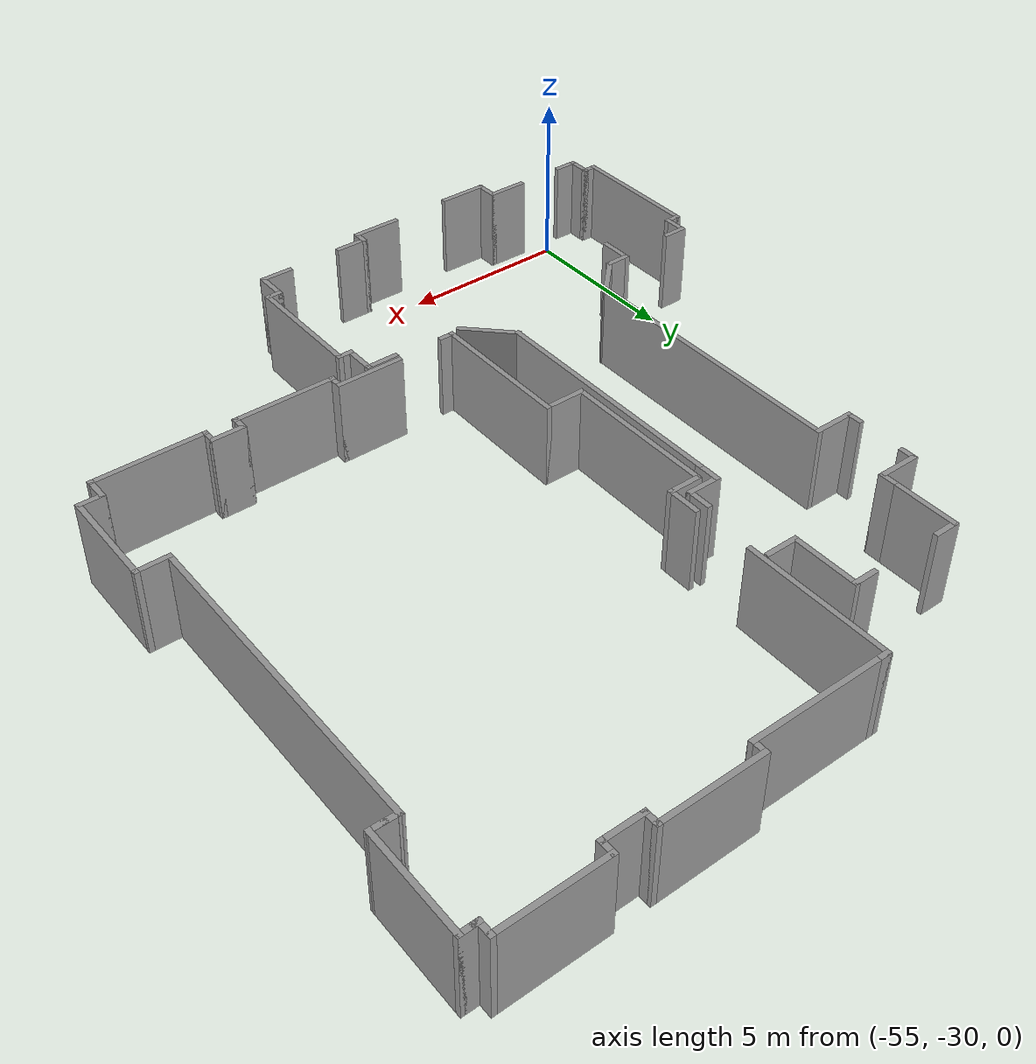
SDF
<?xml version='1.0'?>
<sdf version='1.7'>
  <model name='labypasillo'>
    <pose>-28.3961 -15.5624 0 0 -0 0</pose>
    <link name='Wall_10'>
      <collision name='Wall_10_Collision'>
        <geometry>
          <box>
            <size>0.5 0.15 2.5</size>
          </box>
        </geometry>
        <pose>0 0 1.25 0 -0 0</pose>
      </collision>
      <visual name='Wall_10_Visual'>
        <pose>0 0 1.25 0 -0 0</pose>
        <geometry>
          <box>
            <size>0.5 0.15 2.5</size>
          </box>
        </geometry>
        <material>
          <script>
            <uri>file://media/materials/scripts/gazebo.material</uri>
            <name>Gazebo/Grey</name>
          </script>
          <ambient>1 1 1 1</ambient>
        </material>
        <meta>
          <layer>0</layer>
        </meta>
      </visual>
      <pose>-11.8394 5.68996 0 0 -0 -1.5708</pose>
    </link>
    <link name='Wall_11'>
      <collision name='Wall_11_Collision'>
        <geometry>
          <box>
            <size>1.25 0.15 2.5</size>
          </box>
        </geometry>
        <pose>0 0 1.25 0 -0 0</pose>
      </collision>
      <visual name='Wall_11_Visual'>
        <pose>0 0 1.25 0 -0 0</pose>
        <geometry>
          <box>
            <size>1.25 0.15 2.5</size>
          </box>
        </geometry>
        <material>
          <script>
            <uri>file://media/materials/scripts/gazebo.material</uri>
            <name>Gazebo/Grey</name>
          </script>
          <ambient>1 1 1 1</ambient>
        </material>
        <meta>
          <layer>0</layer>
        </meta>
      </visual>
      <pose>-12.3894 5.51496 0 0 -0 3.14159</pose>
    </link>
    <link name='Wall_12'>
      <collision name='Wall_12_Collision'>
        <geometry>
          <box>
            <size>0.5 0.15 2.5</size>
          </box>
        </geometry>
        <pose>0 0 1.25 0 -0 0</pose>
      </collision>
      <visual name='Wall_12_Visual'>
        <pose>0 0 1.25 0 -0 0</pose>
        <geometry>
          <box>
            <size>0.5 0.15 2.5</size>
          </box>
        </geometry>
        <material>
          <script>
            <uri>file://media/materials/scripts/gazebo.material</uri>
            <name>Gazebo/Grey</name>
          </script>
          <ambient>1 1 1 1</ambient>
        </material>
        <meta>
          <layer>0</layer>
        </meta>
      </visual>
      <pose>-12.9394 5.68996 0 0 -0 1.5708</pose>
    </link>
    <link name='Wall_13'>
      <collision name='Wall_13_Collision'>
        <geometry>
          <box>
            <size>3 0.15 2.5</size>
          </box>
        </geometry>
        <pose>0 0 1.25 0 -0 0</pose>
      </collision>
      <visual name='Wall_13_Visual'>
        <pose>0 0 1.25 0 -0 0</pose>
        <geometry>
          <box>
            <size>3 0.15 2.5</size>
          </box>
        </geometry>
        <material>
          <script>
            <uri>file://media/materials/scripts/gazebo.material</uri>
            <name>Gazebo/Grey</name>
          </script>
          <ambient>1 1 1 1</ambient>
        </material>
        <meta>
          <layer>0</layer>
        </meta>
      </visual>
      <pose>-14.3644 5.86496 0 0 -0 3.14159</pose>
    </link>
    <link name='Wall_14'>
      <collision name='Wall_14_Collision'>
        <geometry>
          <box>
            <size>0.5 0.15 2.5</size>
          </box>
        </geometry>
        <pose>0 0 1.25 0 -0 0</pose>
      </collision>
      <visual name='Wall_14_Visual'>
        <pose>0 0 1.25 0 -0 0</pose>
        <geometry>
          <box>
            <size>0.5 0.15 2.5</size>
          </box>
        </geometry>
        <material>
          <script>
            <uri>file://media/materials/scripts/gazebo.material</uri>
            <name>Gazebo/Grey</name>
          </script>
          <ambient>1 1 1 1</ambient>
        </material>
        <meta>
          <layer>0</layer>
        </meta>
      </visual>
      <pose>-15.7894 5.68996 0 0 -0 -1.5708</pose>
    </link>
    <link name='Wall_15'>
      <collision name='Wall_15_Collision'>
        <geometry>
          <box>
            <size>3.75 0.15 2.5</size>
          </box>
        </geometry>
        <pose>0 0 1.25 0 -0 0</pose>
      </collision>
      <visual name='Wall_15_Visual'>
        <pose>0 0 1.25 0 -0 0</pose>
        <geometry>
          <box>
            <size>3.75 0.15 2.5</size>
          </box>
        </geometry>
        <material>
          <script>
            <uri>file://media/materials/scripts/gazebo.material</uri>
            <name>Gazebo/Grey</name>
          </script>
          <ambient>1 1 1 1</ambient>
        </material>
        <meta>
          <layer>0</layer>
        </meta>
      </visual>
      <pose>-17.5894 5.51496 0 0 -0 3.14159</pose>
    </link>
    <link name='Wall_16'>
      <collision name='Wall_16_Collision'>
        <geometry>
          <box>
            <size>0.5 0.15 2.5</size>
          </box>
        </geometry>
        <pose>0 0 1.25 0 -0 0</pose>
      </collision>
      <visual name='Wall_16_Visual'>
        <pose>0 0 1.25 0 -0 0</pose>
        <geometry>
          <box>
            <size>0.5 0.15 2.5</size>
          </box>
        </geometry>
        <material>
          <script>
            <uri>file://media/materials/scripts/gazebo.material</uri>
            <name>Gazebo/Grey</name>
          </script>
          <ambient>1 1 1 1</ambient>
        </material>
        <meta>
          <layer>0</layer>
        </meta>
      </visual>
      <pose>-19.5644 5.51496 0 0 -0 3.14159</pose>
    </link>
    <link name='Wall_17'>
      <collision name='Wall_17_Collision'>
        <geometry>
          <box>
            <size>4.25 0.15 2.5</size>
          </box>
        </geometry>
        <pose>0 0 1.25 0 -0 0</pose>
      </collision>
      <visual name='Wall_17_Visual'>
        <pose>0 0 1.25 0 -0 0</pose>
        <geometry>
          <box>
            <size>4.25 0.15 2.5</size>
          </box>
        </geometry>
        <material>
          <script>
            <uri>file://media/materials/scripts/gazebo.material</uri>
            <name>Gazebo/Grey</name>
          </script>
          <ambient>1 1 1 1</ambient>
        </material>
        <meta>
          <layer>0</layer>
        </meta>
      </visual>
      <pose>-19.7394 3.46496 0 0 -0 -1.5708</pose>
    </link>
    <link name='Wall_19'>
      <collision name='Wall_19_Collision'>
        <geometry>
          <box>
            <size>1 0.15 2.5</size>
          </box>
        </geometry>
        <pose>0 0 1.25 0 -0 0</pose>
      </collision>
      <visual name='Wall_19_Visual'>
        <pose>0 0 1.25 0 -0 0</pose>
        <geometry>
          <box>
            <size>1 0.15 2.5</size>
          </box>
        </geometry>
        <material>
          <script>
            <uri>file://media/materials/scripts/gazebo.material</uri>
            <name>Gazebo/Grey</name>
          </script>
          <ambient>1 1 1 1</ambient>
        </material>
        <meta>
          <layer>0</layer>
        </meta>
      </visual>
      <pose>-19.6682 -0.74389 0 0 -0 -1.5708</pose>
    </link>
    <link name='Wall_20'>
      <collision name='Wall_20_Collision'>
        <geometry>
          <box>
            <size>1 0.15 2.5</size>
          </box>
        </geometry>
        <pose>0 0 1.25 0 -0 0</pose>
      </collision>
      <visual name='Wall_20_Visual'>
        <pose>0 0 1.25 0 -0 0</pose>
        <geometry>
          <box>
            <size>1 0.15 2.5</size>
          </box>
        </geometry>
        <material>
          <script>
            <uri>file://media/materials/scripts/gazebo.material</uri>
            <name>Gazebo/Grey</name>
          </script>
          <ambient>1 1 1 1</ambient>
        </material>
        <meta>
          <layer>0</layer>
        </meta>
      </visual>
      <pose>-20.0932 -1.16889 0 0 -0 3.14159</pose>
    </link>
    <link name='Wall_21'>
      <collision name='Wall_21_Collision'>
        <geometry>
          <box>
            <size>4.5 0.15 2.5</size>
          </box>
        </geometry>
        <pose>0 0 1.25 0 -0 0</pose>
      </collision>
      <visual name='Wall_21_Visual'>
        <pose>0 0 1.25 0 -0 0</pose>
        <geometry>
          <box>
            <size>4.5 0.15 2.5</size>
          </box>
        </geometry>
        <material>
          <script>
            <uri>file://media/materials/scripts/gazebo.material</uri>
            <name>Gazebo/Grey</name>
          </script>
          <ambient>1 1 1 1</ambient>
        </material>
        <meta>
          <layer>0</layer>
        </meta>
      </visual>
      <pose>-20.5182 -3.34389 0 0 -0 -1.5708</pose>
    </link>
    <link name='Wall_22'>
      <collision name='Wall_22_Collision'>
        <geometry>
          <box>
            <size>1.25 0.15 2.5</size>
          </box>
        </geometry>
        <pose>0 0 1.25 0 -0 0</pose>
      </collision>
      <visual name='Wall_22_Visual'>
        <pose>0 0 1.25 0 -0 0</pose>
        <geometry>
          <box>
            <size>1.25 0.15 2.5</size>
          </box>
        </geometry>
        <material>
          <script>
            <uri>file://media/materials/scripts/gazebo.material</uri>
            <name>Gazebo/Grey</name>
          </script>
          <ambient>1 1 1 1</ambient>
        </material>
        <meta>
          <layer>0</layer>
        </meta>
      </visual>
      <pose>-19.9682 -5.51889 0 0 -0 0</pose>
    </link>
    <link name='Wall_23'>
      <collision name='Wall_23_Collision'>
        <geometry>
          <box>
            <size>4.25 0.15 2.5</size>
          </box>
        </geometry>
        <pose>0 0 1.25 0 -0 0</pose>
      </collision>
      <visual name='Wall_23_Visual'>
        <pose>0 0 1.25 0 -0 0</pose>
        <geometry>
          <box>
            <size>4.25 0.15 2.5</size>
          </box>
        </geometry>
        <material>
          <script>
            <uri>file://media/materials/scripts/gazebo.material</uri>
            <name>Gazebo/Grey</name>
          </script>
          <ambient>1 1 1 1</ambient>
        </material>
        <meta>
          <layer>0</layer>
        </meta>
      </visual>
      <pose>-19.4182 -7.56889 0 0 -0 -1.5708</pose>
    </link>
    <link name='Wall_24'>
      <collision name='Wall_24_Collision'>
        <geometry>
          <box>
            <size>0.5 0.15 2.5</size>
          </box>
        </geometry>
        <pose>0 0 1.25 0 -0 0</pose>
      </collision>
      <visual name='Wall_24_Visual'>
        <pose>0 0 1.25 0 -0 0</pose>
        <geometry>
          <box>
            <size>0.5 0.15 2.5</size>
          </box>
        </geometry>
        <material>
          <script>
            <uri>file://media/materials/scripts/gazebo.material</uri>
            <name>Gazebo/Grey</name>
          </script>
          <ambient>1 1 1 1</ambient>
        </material>
        <meta>
          <layer>0</layer>
        </meta>
      </visual>
      <pose>-19.2432 -9.61889 0 0 -0 0</pose>
    </link>
    <link name='Wall_26'>
      <collision name='Wall_26_Collision'>
        <geometry>
          <box>
            <size>2 0.15 2.5</size>
          </box>
        </geometry>
        <pose>0 0 1.25 0 -0 0</pose>
      </collision>
      <visual name='Wall_26_Visual'>
        <pose>0 0 1.25 0 -0 0</pose>
        <geometry>
          <box>
            <size>2 0.15 2.5</size>
          </box>
        </geometry>
        <material>
          <script>
            <uri>file://media/materials/scripts/gazebo.material</uri>
            <name>Gazebo/Grey</name>
          </script>
          <ambient>1 1 1 1</ambient>
        </material>
        <meta>
          <layer>0</layer>
        </meta>
      </visual>
      <pose>-16.7077 -9.52487 0 0 -0 0</pose>
    </link>
    <link name='Wall_27'>
      <collision name='Wall_27_Collision'>
        <geometry>
          <box>
            <size>0.5 0.15 2.5</size>
          </box>
        </geometry>
        <pose>0 0 1.25 0 -0 0</pose>
      </collision>
      <visual name='Wall_27_Visual'>
        <pose>0 0 1.25 0 -0 0</pose>
        <geometry>
          <box>
            <size>0.5 0.15 2.5</size>
          </box>
        </geometry>
        <material>
          <script>
            <uri>file://media/materials/scripts/gazebo.material</uri>
            <name>Gazebo/Grey</name>
          </script>
          <ambient>1 1 1 1</ambient>
        </material>
        <meta>
          <layer>0</layer>
        </meta>
      </visual>
      <pose>-15.7827 -9.69987 0 0 -0 -1.5708</pose>
    </link>
    <link name='Wall_28'>
      <collision name='Wall_28_Collision'>
        <geometry>
          <box>
            <size>3 0.15 2.5</size>
          </box>
        </geometry>
        <pose>0 0 1.25 0 -0 0</pose>
      </collision>
      <visual name='Wall_28_Visual'>
        <pose>0 0 1.25 0 -0 0</pose>
        <geometry>
          <box>
            <size>3 0.15 2.5</size>
          </box>
        </geometry>
        <material>
          <script>
            <uri>file://media/materials/scripts/gazebo.material</uri>
            <name>Gazebo/Grey</name>
          </script>
          <ambient>1 1 1 1</ambient>
        </material>
        <meta>
          <layer>0</layer>
        </meta>
      </visual>
      <pose>-14.3577 -9.87487 0 0 -0 0</pose>
    </link>
    <link name='Wall_29'>
      <collision name='Wall_29_Collision'>
        <geometry>
          <box>
            <size>0.5 0.15 2.5</size>
          </box>
        </geometry>
        <pose>0 0 1.25 0 -0 0</pose>
      </collision>
      <visual name='Wall_29_Visual'>
        <pose>0 0 1.25 0 -0 0</pose>
        <geometry>
          <box>
            <size>0.5 0.15 2.5</size>
          </box>
        </geometry>
        <material>
          <script>
            <uri>file://media/materials/scripts/gazebo.material</uri>
            <name>Gazebo/Grey</name>
          </script>
          <ambient>1 1 1 1</ambient>
        </material>
        <meta>
          <layer>0</layer>
        </meta>
      </visual>
      <pose>-12.9327 -9.69987 0 0 -0 1.5708</pose>
    </link>
    <link name='Wall_30'>
      <collision name='Wall_30_Collision'>
        <geometry>
          <box>
            <size>1 0.15 2.5</size>
          </box>
        </geometry>
        <pose>0 0 1.25 0 -0 0</pose>
      </collision>
      <visual name='Wall_30_Visual'>
        <pose>0 0 1.25 0 -0 0</pose>
        <geometry>
          <box>
            <size>1 0.15 2.5</size>
          </box>
        </geometry>
        <material>
          <script>
            <uri>file://media/materials/scripts/gazebo.material</uri>
            <name>Gazebo/Grey</name>
          </script>
          <ambient>1 1 1 1</ambient>
        </material>
        <meta>
          <layer>0</layer>
        </meta>
      </visual>
      <pose>-12.5077 -9.52487 0 0 -0 0</pose>
    </link>
    <link name='Wall_34'>
      <collision name='Wall_34_Collision'>
        <geometry>
          <box>
            <size>0.5 0.15 2.5</size>
          </box>
        </geometry>
        <pose>0 0 1.25 0 -0 0</pose>
      </collision>
      <visual name='Wall_34_Visual'>
        <pose>0 0 1.25 0 -0 0</pose>
        <geometry>
          <box>
            <size>0.5 0.15 2.5</size>
          </box>
        </geometry>
        <material>
          <script>
            <uri>file://media/materials/scripts/gazebo.material</uri>
            <name>Gazebo/Grey</name>
          </script>
          <ambient>1 1 1 1</ambient>
        </material>
        <meta>
          <layer>0</layer>
        </meta>
      </visual>
      <pose>-12.0827 -9.69987 0 0 -0 -1.5708</pose>
    </link>
    <link name='Wall_35'>
      <collision name='Wall_35_Collision'>
        <geometry>
          <box>
            <size>3.25 0.15 2.5</size>
          </box>
        </geometry>
        <pose>0 0 1.25 0 -0 0</pose>
      </collision>
      <visual name='Wall_35_Visual'>
        <pose>0 0 1.25 0 -0 0</pose>
        <geometry>
          <box>
            <size>3.25 0.15 2.5</size>
          </box>
        </geometry>
        <material>
          <script>
            <uri>file://media/materials/scripts/gazebo.material</uri>
            <name>Gazebo/Grey</name>
          </script>
          <ambient>1 1 1 1</ambient>
        </material>
        <meta>
          <layer>0</layer>
        </meta>
      </visual>
      <pose>-10.5327 -9.87487 0 0 -0 0</pose>
    </link>
    <link name='Wall_36'>
      <collision name='Wall_36_Collision'>
        <geometry>
          <box>
            <size>0.75 0.15 2.5</size>
          </box>
        </geometry>
        <pose>0 0 1.25 0 -0 0</pose>
      </collision>
      <visual name='Wall_36_Visual'>
        <pose>0 0 1.25 0 -0 0</pose>
        <geometry>
          <box>
            <size>0.75 0.15 2.5</size>
          </box>
        </geometry>
        <material>
          <script>
            <uri>file://media/materials/scripts/gazebo.material</uri>
            <name>Gazebo/Grey</name>
          </script>
          <ambient>1 1 1 1</ambient>
        </material>
        <meta>
          <layer>0</layer>
        </meta>
      </visual>
      <pose>-8.98273 -9.57487 0 0 -0 1.5708</pose>
    </link>
    <link name='Wall_37'>
      <collision name='Wall_37_Collision'>
        <geometry>
          <box>
            <size>0.75 0.15 2.5</size>
          </box>
        </geometry>
        <pose>0 0 1.25 0 -0 0</pose>
      </collision>
      <visual name='Wall_37_Visual'>
        <pose>0 0 1.25 0 -0 0</pose>
        <geometry>
          <box>
            <size>0.75 0.15 2.5</size>
          </box>
        </geometry>
        <material>
          <script>
            <uri>file://media/materials/scripts/gazebo.material</uri>
            <name>Gazebo/Grey</name>
          </script>
          <ambient>1 1 1 1</ambient>
        </material>
        <meta>
          <layer>0</layer>
        </meta>
      </visual>
      <pose>-8.68273 -9.27487 0 0 -0 0</pose>
    </link>
    <link name='Wall_38'>
      <collision name='Wall_38_Collision'>
        <geometry>
          <box>
            <size>3 0.15 2.5</size>
          </box>
        </geometry>
        <pose>0 0 1.25 0 -0 0</pose>
      </collision>
      <visual name='Wall_38_Visual'>
        <pose>0 0 1.25 0 -0 0</pose>
        <geometry>
          <box>
            <size>3 0.15 2.5</size>
          </box>
        </geometry>
        <material>
          <script>
            <uri>file://media/materials/scripts/gazebo.material</uri>
            <name>Gazebo/Grey</name>
          </script>
          <ambient>1 1 1 1</ambient>
        </material>
        <meta>
          <layer>0</layer>
        </meta>
      </visual>
      <pose>-8.38273 -7.84987 0 0 -0 1.5708</pose>
    </link>
    <link name='Wall_39'>
      <collision name='Wall_39_Collision'>
        <geometry>
          <box>
            <size>1 0.15 2.5</size>
          </box>
        </geometry>
        <pose>0 0 1.25 0 -0 0</pose>
      </collision>
      <visual name='Wall_39_Visual'>
        <pose>0 0 1.25 0 -0 0</pose>
        <geometry>
          <box>
            <size>1 0.15 2.5</size>
          </box>
        </geometry>
        <material>
          <script>
            <uri>file://media/materials/scripts/gazebo.material</uri>
            <name>Gazebo/Grey</name>
          </script>
          <ambient>1 1 1 1</ambient>
        </material>
        <meta>
          <layer>0</layer>
        </meta>
      </visual>
      <pose>-8.80773 -6.42487 0 0 -0 3.14159</pose>
    </link>
    <link name='Wall_4'>
      <collision name='Wall_4_Collision'>
        <geometry>
          <box>
            <size>0.5 0.15 2.5</size>
          </box>
        </geometry>
        <pose>0 0 1.25 0 -0 0</pose>
      </collision>
      <visual name='Wall_4_Visual'>
        <pose>0 0 1.25 0 -0 0</pose>
        <geometry>
          <box>
            <size>0.5 0.15 2.5</size>
          </box>
        </geometry>
        <material>
          <script>
            <uri>file://media/materials/scripts/gazebo.material</uri>
            <name>Gazebo/Grey</name>
          </script>
          <ambient>1 1 1 1</ambient>
        </material>
        <meta>
          <layer>0</layer>
        </meta>
      </visual>
      <pose>-8.71436 2.66496 0 0 -0 0</pose>
    </link>
    <link name='Wall_40'>
      <collision name='Wall_40_Collision'>
        <geometry>
          <box>
            <size>9.25 0.15 2.5</size>
          </box>
        </geometry>
        <pose>0 0 1.25 0 -0 0</pose>
      </collision>
      <visual name='Wall_40_Visual'>
        <pose>0 0 1.25 0 -0 0</pose>
        <geometry>
          <box>
            <size>9.25 0.15 2.5</size>
          </box>
        </geometry>
        <material>
          <script>
            <uri>file://media/materials/scripts/gazebo.material</uri>
            <name>Gazebo/Grey</name>
          </script>
          <ambient>1 1 1 1</ambient>
        </material>
        <meta>
          <layer>0</layer>
        </meta>
      </visual>
      <pose>-9.23273 -1.87487 0 0 -0 1.5708</pose>
    </link>
    <link name='Wall_41'>
      <collision name='Wall_41_Collision'>
        <geometry>
          <box>
            <size>0.843444 0.15 2.5</size>
          </box>
        </geometry>
        <pose>0 0 1.25 0 -0 0</pose>
      </collision>
      <visual name='Wall_41_Visual'>
        <pose>0 0 1.25 0 -0 0</pose>
        <geometry>
          <box>
            <size>0.843444 0.15 2.5</size>
          </box>
        </geometry>
        <material>
          <script>
            <uri>file://media/materials/scripts/gazebo.material</uri>
            <name>Gazebo/Grey</name>
          </script>
          <ambient>1 1 1 1</ambient>
        </material>
        <meta>
          <layer>0</layer>
        </meta>
      </visual>
      <pose>-8.88605 2.67004 0 0 -0 -0.014666</pose>
    </link>
    <link name='Wall_43'>
      <collision name='Wall_43_Collision'>
        <geometry>
          <box>
            <size>2 0.15 2.5</size>
          </box>
        </geometry>
        <pose>0 0 1.25 0 -0 0</pose>
      </collision>
      <visual name='Wall_43_Visual'>
        <pose>0 0 1.25 0 -0 0</pose>
        <geometry>
          <box>
            <size>2 0.15 2.5</size>
          </box>
        </geometry>
        <material>
          <script>
            <uri>file://media/materials/scripts/gazebo.material</uri>
            <name>Gazebo/Grey</name>
          </script>
          <ambient>1 1 1 1</ambient>
        </material>
        <meta>
          <layer>0</layer>
        </meta>
      </visual>
      <pose>-20.7798 2.72069 0 0 -0 -1.5708</pose>
    </link>
    <link name='Wall_44'>
      <collision name='Wall_44_Collision'>
        <geometry>
          <box>
            <size>1 0.15 2.5</size>
          </box>
        </geometry>
        <pose>0 0 1.25 0 -0 0</pose>
      </collision>
      <visual name='Wall_44_Visual'>
        <pose>0 0 1.25 0 -0 0</pose>
        <geometry>
          <box>
            <size>1 0.15 2.5</size>
          </box>
        </geometry>
        <material>
          <script>
            <uri>file://media/materials/scripts/gazebo.material</uri>
            <name>Gazebo/Grey</name>
          </script>
          <ambient>1 1 1 1</ambient>
        </material>
        <meta>
          <layer>0</layer>
        </meta>
      </visual>
      <pose>-20.3548 1.79569 0 0 -0 0</pose>
    </link>
    <link name='Wall_47'>
      <collision name='Wall_47_Collision'>
        <geometry>
          <box>
            <size>0.75 0.15 2.5</size>
          </box>
        </geometry>
        <pose>0 0 1.25 0 -0 0</pose>
      </collision>
      <visual name='Wall_47_Visual'>
        <pose>0 0 1.25 0 -0 0</pose>
        <geometry>
          <box>
            <size>0.75 0.15 2.5</size>
          </box>
        </geometry>
        <material>
          <script>
            <uri>file://media/materials/scripts/gazebo.material</uri>
            <name>Gazebo/Grey</name>
          </script>
          <ambient>1 1 1 1</ambient>
        </material>
        <meta>
          <layer>0</layer>
        </meta>
      </visual>
      <pose>-21.0798 3.64569 0 0 -0 3.14159</pose>
    </link>
    <link name='Wall_49'>
      <collision name='Wall_49_Collision'>
        <geometry>
          <box>
            <size>0.75 0.15 2.5</size>
          </box>
        </geometry>
        <pose>0 0 1.25 0 -0 0</pose>
      </collision>
      <visual name='Wall_49_Visual'>
        <pose>0 0 1.25 0 -0 0</pose>
        <geometry>
          <box>
            <size>0.75 0.15 2.5</size>
          </box>
        </geometry>
        <material>
          <script>
            <uri>file://media/materials/scripts/gazebo.material</uri>
            <name>Gazebo/Grey</name>
          </script>
          <ambient>1 1 1 1</ambient>
        </material>
        <meta>
          <layer>0</layer>
        </meta>
      </visual>
      <pose>-23.7691 3.67747 0 0 -0 3.14159</pose>
    </link>
    <link name='Wall_5'>
      <collision name='Wall_5_Collision'>
        <geometry>
          <box>
            <size>3 0.15 2.5</size>
          </box>
        </geometry>
        <pose>0 0 1.25 0 -0 0</pose>
      </collision>
      <visual name='Wall_5_Visual'>
        <pose>0 0 1.25 0 -0 0</pose>
        <geometry>
          <box>
            <size>3 0.15 2.5</size>
          </box>
        </geometry>
        <material>
          <script>
            <uri>file://media/materials/scripts/gazebo.material</uri>
            <name>Gazebo/Grey</name>
          </script>
          <ambient>1 1 1 1</ambient>
        </material>
        <meta>
          <layer>0</layer>
        </meta>
      </visual>
      <pose>-8.53936 4.08996 0 0 -0 1.5708</pose>
    </link>
    <link name='Wall_50'>
      <collision name='Wall_50_Collision'>
        <geometry>
          <box>
            <size>2 0.15 2.5</size>
          </box>
        </geometry>
        <pose>0 0 1.25 0 -0 0</pose>
      </collision>
      <visual name='Wall_50_Visual'>
        <pose>0 0 1.25 0 -0 0</pose>
        <geometry>
          <box>
            <size>2 0.15 2.5</size>
          </box>
        </geometry>
        <material>
          <script>
            <uri>file://media/materials/scripts/gazebo.material</uri>
            <name>Gazebo/Grey</name>
          </script>
          <ambient>1 1 1 1</ambient>
        </material>
        <meta>
          <layer>0</layer>
        </meta>
      </visual>
      <pose>-24.0691 2.75247 0 0 -0 -1.5708</pose>
    </link>
    <link name='Wall_51'>
      <collision name='Wall_51_Collision'>
        <geometry>
          <box>
            <size>0.5 0.15 2.5</size>
          </box>
        </geometry>
        <pose>0 0 1.25 0 -0 0</pose>
      </collision>
      <visual name='Wall_51_Visual'>
        <pose>0 0 1.25 0 -0 0</pose>
        <geometry>
          <box>
            <size>0.5 0.15 2.5</size>
          </box>
        </geometry>
        <material>
          <script>
            <uri>file://media/materials/scripts/gazebo.material</uri>
            <name>Gazebo/Grey</name>
          </script>
          <ambient>1 1 1 1</ambient>
        </material>
        <meta>
          <layer>0</layer>
        </meta>
      </visual>
      <pose>-24.0691 1.65247 0 0 -0 -1.5708</pose>
    </link>
    <link name='Wall_52'>
      <collision name='Wall_52_Collision'>
        <geometry>
          <box>
            <size>1.25 0.15 2.5</size>
          </box>
        </geometry>
        <pose>0 0 1.25 0 -0 0</pose>
      </collision>
      <visual name='Wall_52_Visual'>
        <pose>0 0 1.25 0 -0 0</pose>
        <geometry>
          <box>
            <size>1.25 0.15 2.5</size>
          </box>
        </geometry>
        <material>
          <script>
            <uri>file://media/materials/scripts/gazebo.material</uri>
            <name>Gazebo/Grey</name>
          </script>
          <ambient>1 1 1 1</ambient>
        </material>
        <meta>
          <layer>0</layer>
        </meta>
      </visual>
      <pose>-24.6191 1.47747 0 0 -0 3.14159</pose>
    </link>
    <link name='Wall_53'>
      <collision name='Wall_53_Collision'>
        <geometry>
          <box>
            <size>0.5 0.15 2.5</size>
          </box>
        </geometry>
        <pose>0 0 1.25 0 -0 0</pose>
      </collision>
      <visual name='Wall_53_Visual'>
        <pose>0 0 1.25 0 -0 0</pose>
        <geometry>
          <box>
            <size>0.5 0.15 2.5</size>
          </box>
        </geometry>
        <material>
          <script>
            <uri>file://media/materials/scripts/gazebo.material</uri>
            <name>Gazebo/Grey</name>
          </script>
          <ambient>1 1 1 1</ambient>
        </material>
        <meta>
          <layer>0</layer>
        </meta>
      </visual>
      <pose>-25.1691 1.30247 0 0 -0 -1.5708</pose>
    </link>
    <link name='Wall_55'>
      <collision name='Wall_55_Collision'>
        <geometry>
          <box>
            <size>0.5 0.15 2.5</size>
          </box>
        </geometry>
        <pose>0 0 1.25 0 -0 0</pose>
      </collision>
      <visual name='Wall_55_Visual'>
        <pose>0 0 1.25 0 -0 0</pose>
        <geometry>
          <box>
            <size>0.5 0.15 2.5</size>
          </box>
        </geometry>
        <material>
          <script>
            <uri>file://media/materials/scripts/gazebo.material</uri>
            <name>Gazebo/Grey</name>
          </script>
          <ambient>1 1 1 1</ambient>
        </material>
        <meta>
          <layer>0</layer>
        </meta>
      </visual>
      <pose>-25.1989 -0.480021 0 0 -0 -1.5708</pose>
    </link>
    <link name='Wall_56'>
      <collision name='Wall_56_Collision'>
        <geometry>
          <box>
            <size>1.25 0.15 2.5</size>
          </box>
        </geometry>
        <pose>0 0 1.25 0 -0 0</pose>
      </collision>
      <visual name='Wall_56_Visual'>
        <pose>0 0 1.25 0 -0 0</pose>
        <geometry>
          <box>
            <size>1.25 0.15 2.5</size>
          </box>
        </geometry>
        <material>
          <script>
            <uri>file://media/materials/scripts/gazebo.material</uri>
            <name>Gazebo/Grey</name>
          </script>
          <ambient>1 1 1 1</ambient>
        </material>
        <meta>
          <layer>0</layer>
        </meta>
      </visual>
      <pose>-24.6489 -0.655021 0 0 -0 0</pose>
    </link>
    <link name='Wall_57'>
      <collision name='Wall_57_Collision'>
        <geometry>
          <box>
            <size>8.25 0.15 2.5</size>
          </box>
        </geometry>
        <pose>0 0 1.25 0 -0 0</pose>
      </collision>
      <visual name='Wall_57_Visual'>
        <pose>0 0 1.25 0 -0 0</pose>
        <geometry>
          <box>
            <size>8.25 0.15 2.5</size>
          </box>
        </geometry>
        <material>
          <script>
            <uri>file://media/materials/scripts/gazebo.material</uri>
            <name>Gazebo/Grey</name>
          </script>
          <ambient>1 1 1 1</ambient>
        </material>
        <meta>
          <layer>0</layer>
        </meta>
      </visual>
      <pose>-24.0989 -4.70502 0 0 -0 -1.5708</pose>
    </link>
    <link name='Wall_58'>
      <collision name='Wall_58_Collision'>
        <geometry>
          <box>
            <size>1.5 0.15 2.5</size>
          </box>
        </geometry>
        <pose>0 0 1.25 0 -0 0</pose>
      </collision>
      <visual name='Wall_58_Visual'>
        <pose>0 0 1.25 0 -0 0</pose>
        <geometry>
          <box>
            <size>1.5 0.15 2.5</size>
          </box>
        </geometry>
        <material>
          <script>
            <uri>file://media/materials/scripts/gazebo.material</uri>
            <name>Gazebo/Grey</name>
          </script>
          <ambient>1 1 1 1</ambient>
        </material>
        <meta>
          <layer>0</layer>
        </meta>
      </visual>
      <pose>-24.5762 -9.23232 0 0 -0 -2.35619</pose>
    </link>
    <link name='Wall_59'>
      <collision name='Wall_59_Collision'>
        <geometry>
          <box>
            <size>0.75 0.15 2.5</size>
          </box>
        </geometry>
        <pose>0 0 1.25 0 -0 0</pose>
      </collision>
      <visual name='Wall_59_Visual'>
        <pose>0 0 1.25 0 -0 0</pose>
        <geometry>
          <box>
            <size>0.75 0.15 2.5</size>
          </box>
        </geometry>
        <material>
          <script>
            <uri>file://media/materials/scripts/gazebo.material</uri>
            <name>Gazebo/Grey</name>
          </script>
          <ambient>1 1 1 1</ambient>
        </material>
        <meta>
          <layer>0</layer>
        </meta>
      </visual>
      <pose>-25.3535 -9.70961 0 0 -0 3.14159</pose>
    </link>
    <link name='Wall_6'>
      <collision name='Wall_6_Collision'>
        <geometry>
          <box>
            <size>0.5 0.15 2.5</size>
          </box>
        </geometry>
        <pose>0 0 1.25 0 -0 0</pose>
      </collision>
      <visual name='Wall_6_Visual'>
        <pose>0 0 1.25 0 -0 0</pose>
        <geometry>
          <box>
            <size>0.5 0.15 2.5</size>
          </box>
        </geometry>
        <material>
          <script>
            <uri>file://media/materials/scripts/gazebo.material</uri>
            <name>Gazebo/Grey</name>
          </script>
          <ambient>1 1 1 1</ambient>
        </material>
        <meta>
          <layer>0</layer>
        </meta>
      </visual>
      <pose>-8.71436 5.51496 0 0 -0 3.14159</pose>
    </link>
    <link name='Wall_60'>
      <collision name='Wall_60_Collision'>
        <geometry>
          <box>
            <size>1 0.15 2.5</size>
          </box>
        </geometry>
        <pose>0 0 1.25 0 -0 0</pose>
      </collision>
      <visual name='Wall_60_Visual'>
        <pose>0 0 1.25 0 -0 0</pose>
        <geometry>
          <box>
            <size>1 0.15 2.5</size>
          </box>
        </geometry>
        <material>
          <script>
            <uri>file://media/materials/scripts/gazebo.material</uri>
            <name>Gazebo/Grey</name>
          </script>
          <ambient>1 1 1 1</ambient>
        </material>
        <meta>
          <layer>0</layer>
        </meta>
      </visual>
      <pose>-25.6535 -10.1346 0 0 -0 -1.5708</pose>
    </link>
    <link name='Wall_62'>
      <collision name='Wall_62_Collision'>
        <geometry>
          <box>
            <size>0.75 0.15 2.5</size>
          </box>
        </geometry>
        <pose>0 0 1.25 0 -0 0</pose>
      </collision>
      <visual name='Wall_62_Visual'>
        <pose>0 0 1.25 0 -0 0</pose>
        <geometry>
          <box>
            <size>0.75 0.15 2.5</size>
          </box>
        </geometry>
        <material>
          <script>
            <uri>file://media/materials/scripts/gazebo.material</uri>
            <name>Gazebo/Grey</name>
          </script>
          <ambient>1 1 1 1</ambient>
        </material>
        <meta>
          <layer>0</layer>
        </meta>
      </visual>
      <pose>-27.6712 -9.85897 0 0 -0 3.14159</pose>
    </link>
    <link name='Wall_63'>
      <collision name='Wall_63_Collision'>
        <geometry>
          <box>
            <size>0.75 0.15 2.5</size>
          </box>
        </geometry>
        <pose>0 0 1.25 0 -0 0</pose>
      </collision>
      <visual name='Wall_63_Visual'>
        <pose>0 0 1.25 0 -0 0</pose>
        <geometry>
          <box>
            <size>0.75 0.15 2.5</size>
          </box>
        </geometry>
        <material>
          <script>
            <uri>file://media/materials/scripts/gazebo.material</uri>
            <name>Gazebo/Grey</name>
          </script>
          <ambient>1 1 1 1</ambient>
        </material>
        <meta>
          <layer>0</layer>
        </meta>
      </visual>
      <pose>-27.9711 -10.159 0 0 -0 -1.5708</pose>
    </link>
    <link name='Wall_64'>
      <collision name='Wall_64_Collision'>
        <geometry>
          <box>
            <size>0.5 0.15 2.5</size>
          </box>
        </geometry>
        <pose>0 0 1.25 0 -0 0</pose>
      </collision>
      <visual name='Wall_64_Visual'>
        <pose>0 0 1.25 0 -0 0</pose>
        <geometry>
          <box>
            <size>0.5 0.15 2.5</size>
          </box>
        </geometry>
        <material>
          <script>
            <uri>file://media/materials/scripts/gazebo.material</uri>
            <name>Gazebo/Grey</name>
          </script>
          <ambient>1 1 1 1</ambient>
        </material>
        <meta>
          <layer>0</layer>
        </meta>
      </visual>
      <pose>-28.1461 -10.459 0 0 -0 3.14159</pose>
    </link>
    <link name='Wall_65'>
      <collision name='Wall_65_Collision'>
        <geometry>
          <box>
            <size>4 0.15 2.5</size>
          </box>
        </geometry>
        <pose>0 0 1.25 0 -0 0</pose>
      </collision>
      <visual name='Wall_65_Visual'>
        <pose>0 0 1.25 0 -0 0</pose>
        <geometry>
          <box>
            <size>4 0.15 2.5</size>
          </box>
        </geometry>
        <material>
          <script>
            <uri>file://media/materials/scripts/gazebo.material</uri>
            <name>Gazebo/Grey</name>
          </script>
          <ambient>1 1 1 1</ambient>
        </material>
        <meta>
          <layer>0</layer>
        </meta>
      </visual>
      <pose>-28.3211 -12.384 0 0 -0 -1.5708</pose>
    </link>
    <link name='Wall_66'>
      <collision name='Wall_66_Collision'>
        <geometry>
          <box>
            <size>0.5 0.15 2.5</size>
          </box>
        </geometry>
        <pose>0 0 1.25 0 -0 0</pose>
      </collision>
      <visual name='Wall_66_Visual'>
        <pose>0 0 1.25 0 -0 0</pose>
        <geometry>
          <box>
            <size>0.5 0.15 2.5</size>
          </box>
        </geometry>
        <material>
          <script>
            <uri>file://media/materials/scripts/gazebo.material</uri>
            <name>Gazebo/Grey</name>
          </script>
          <ambient>1 1 1 1</ambient>
        </material>
        <meta>
          <layer>0</layer>
        </meta>
      </visual>
      <pose>-28.1461 -14.309 0 0 -0 0</pose>
    </link>
    <link name='Wall_67'>
      <collision name='Wall_67_Collision'>
        <geometry>
          <box>
            <size>0.75 0.15 2.5</size>
          </box>
        </geometry>
        <pose>0 0 1.25 0 -0 0</pose>
      </collision>
      <visual name='Wall_67_Visual'>
        <pose>0 0 1.25 0 -0 0</pose>
        <geometry>
          <box>
            <size>0.75 0.15 2.5</size>
          </box>
        </geometry>
        <material>
          <script>
            <uri>file://media/materials/scripts/gazebo.material</uri>
            <name>Gazebo/Grey</name>
          </script>
          <ambient>1 1 1 1</ambient>
        </material>
        <meta>
          <layer>0</layer>
        </meta>
      </visual>
      <pose>-27.9711 -14.609 0 0 -0 -1.5708</pose>
    </link>
    <link name='Wall_68'>
      <collision name='Wall_68_Collision'>
        <geometry>
          <box>
            <size>0.75 0.15 2.5</size>
          </box>
        </geometry>
        <pose>0 0 1.25 0 -0 0</pose>
      </collision>
      <visual name='Wall_68_Visual'>
        <pose>0 0 1.25 0 -0 0</pose>
        <geometry>
          <box>
            <size>0.75 0.15 2.5</size>
          </box>
        </geometry>
        <material>
          <script>
            <uri>file://media/materials/scripts/gazebo.material</uri>
            <name>Gazebo/Grey</name>
          </script>
          <ambient>1 1 1 1</ambient>
        </material>
        <meta>
          <layer>0</layer>
        </meta>
      </visual>
      <pose>-27.6712 -14.909 0 0 -0 0</pose>
    </link>
    <link name='Wall_7'>
      <collision name='Wall_7_Collision'>
        <geometry>
          <box>
            <size>0.25 0.15 2.5</size>
          </box>
        </geometry>
        <pose>0 0 1.25 0 -0 0</pose>
      </collision>
      <visual name='Wall_7_Visual'>
        <pose>0 0 1.25 0 -0 0</pose>
        <geometry>
          <box>
            <size>0.25 0.15 2.5</size>
          </box>
        </geometry>
        <material>
          <script>
            <uri>file://media/materials/scripts/gazebo.material</uri>
            <name>Gazebo/Grey</name>
          </script>
          <ambient>1 1 1 1</ambient>
        </material>
        <meta>
          <layer>0</layer>
        </meta>
      </visual>
      <pose>-8.93936 5.51496 0 0 -0 3.14159</pose>
    </link>
    <link name='Wall_70'>
      <collision name='Wall_70_Collision'>
        <geometry>
          <box>
            <size>1.25 0.15 2.5</size>
          </box>
        </geometry>
        <pose>0 0 1.25 0 -0 0</pose>
      </collision>
      <visual name='Wall_70_Visual'>
        <pose>0 0 1.25 0 -0 0</pose>
        <geometry>
          <box>
            <size>1.25 0.15 2.5</size>
          </box>
        </geometry>
        <material>
          <script>
            <uri>file://media/materials/scripts/gazebo.material</uri>
            <name>Gazebo/Grey</name>
          </script>
          <ambient>1 1 1 1</ambient>
        </material>
        <meta>
          <layer>0</layer>
        </meta>
      </visual>
      <pose>-25.3327 -14.8874 0 0 -0 0</pose>
    </link>
    <link name='Wall_71'>
      <collision name='Wall_71_Collision'>
        <geometry>
          <box>
            <size>0.75 0.15 2.5</size>
          </box>
        </geometry>
        <pose>0 0 1.25 0 -0 0</pose>
      </collision>
      <visual name='Wall_71_Visual'>
        <pose>0 0 1.25 0 -0 0</pose>
        <geometry>
          <box>
            <size>0.75 0.15 2.5</size>
          </box>
        </geometry>
        <material>
          <script>
            <uri>file://media/materials/scripts/gazebo.material</uri>
            <name>Gazebo/Grey</name>
          </script>
          <ambient>1 1 1 1</ambient>
        </material>
        <meta>
          <layer>0</layer>
        </meta>
      </visual>
      <pose>-24.7827 -15.1874 0 0 -0 -1.5708</pose>
    </link>
    <link name='Wall_72'>
      <collision name='Wall_72_Collision'>
        <geometry>
          <box>
            <size>1.5 0.15 2.5</size>
          </box>
        </geometry>
        <pose>0 0 1.25 0 -0 0</pose>
      </collision>
      <visual name='Wall_72_Visual'>
        <pose>0 0 1.25 0 -0 0</pose>
        <geometry>
          <box>
            <size>1.5 0.15 2.5</size>
          </box>
        </geometry>
        <material>
          <script>
            <uri>file://media/materials/scripts/gazebo.material</uri>
            <name>Gazebo/Grey</name>
          </script>
          <ambient>1 1 1 1</ambient>
        </material>
        <meta>
          <layer>0</layer>
        </meta>
      </visual>
      <pose>-24.1077 -15.4874 0 0 -0 0</pose>
    </link>
    <link name='Wall_74'>
      <collision name='Wall_74_Collision'>
        <geometry>
          <box>
            <size>1.5 0.15 2.5</size>
          </box>
        </geometry>
        <pose>0 0 1.25 0 -0 0</pose>
      </collision>
      <visual name='Wall_74_Visual'>
        <pose>0 0 1.25 0 -0 0</pose>
        <geometry>
          <box>
            <size>1.5 0.15 2.5</size>
          </box>
        </geometry>
        <material>
          <script>
            <uri>file://media/materials/scripts/gazebo.material</uri>
            <name>Gazebo/Grey</name>
          </script>
          <ambient>1 1 1 1</ambient>
        </material>
        <meta>
          <layer>0</layer>
        </meta>
      </visual>
      <pose>-20.8833 -15.4304 0 0 -0 0</pose>
    </link>
    <link name='Wall_77'>
      <collision name='Wall_77_Collision'>
        <geometry>
          <box>
            <size>0.5 0.15 2.5</size>
          </box>
        </geometry>
        <pose>0 0 1.25 0 -0 0</pose>
      </collision>
      <visual name='Wall_77_Visual'>
        <pose>0 0 1.25 0 -0 0</pose>
        <geometry>
          <box>
            <size>0.5 0.15 2.5</size>
          </box>
        </geometry>
        <material>
          <script>
            <uri>file://media/materials/scripts/gazebo.material</uri>
            <name>Gazebo/Grey</name>
          </script>
          <ambient>1 1 1 1</ambient>
        </material>
        <meta>
          <layer>0</layer>
        </meta>
      </visual>
      <pose>-20.2083 -15.2554 0 0 -0 1.5708</pose>
    </link>
    <link name='Wall_78'>
      <collision name='Wall_78_Collision'>
        <geometry>
          <box>
            <size>1 0.15 2.5</size>
          </box>
        </geometry>
        <pose>0 0 1.25 0 -0 0</pose>
      </collision>
      <visual name='Wall_78_Visual'>
        <pose>0 0 1.25 0 -0 0</pose>
        <geometry>
          <box>
            <size>1 0.15 2.5</size>
          </box>
        </geometry>
        <material>
          <script>
            <uri>file://media/materials/scripts/gazebo.material</uri>
            <name>Gazebo/Grey</name>
          </script>
          <ambient>1 1 1 1</ambient>
        </material>
        <meta>
          <layer>0</layer>
        </meta>
      </visual>
      <pose>-19.7833 -15.0804 0 0 -0 0</pose>
    </link>
    <link name='Wall_8'>
      <collision name='Wall_8_Collision'>
        <geometry>
          <box>
            <size>0.5 0.15 2.5</size>
          </box>
        </geometry>
        <pose>0 0 1.25 0 -0 0</pose>
      </collision>
      <visual name='Wall_8_Visual'>
        <pose>0 0 1.25 0 -0 0</pose>
        <geometry>
          <box>
            <size>0.5 0.15 2.5</size>
          </box>
        </geometry>
        <material>
          <script>
            <uri>file://media/materials/scripts/gazebo.material</uri>
            <name>Gazebo/Grey</name>
          </script>
          <ambient>1 1 1 1</ambient>
        </material>
        <meta>
          <layer>0</layer>
        </meta>
      </visual>
      <pose>-8.98936 5.68996 0 0 -0 1.5708</pose>
    </link>
    <link name='Wall_80'>
      <collision name='Wall_80_Collision'>
        <geometry>
          <box>
            <size>1 0.15 2.5</size>
          </box>
        </geometry>
        <pose>0 0 1.25 0 -0 0</pose>
      </collision>
      <visual name='Wall_80_Visual'>
        <pose>0 0 1.25 0 -0 0</pose>
        <geometry>
          <box>
            <size>1 0.15 2.5</size>
          </box>
        </geometry>
        <material>
          <script>
            <uri>file://media/materials/scripts/gazebo.material</uri>
            <name>Gazebo/Grey</name>
          </script>
          <ambient>1 1 1 1</ambient>
        </material>
        <meta>
          <layer>0</layer>
        </meta>
      </visual>
      <pose>-17.2313 -15.0282 0 0 -0 0</pose>
    </link>
    <link name='Wall_81'>
      <collision name='Wall_81_Collision'>
        <geometry>
          <box>
            <size>1 0.15 2.5</size>
          </box>
        </geometry>
        <pose>0 0 1.25 0 -0 0</pose>
      </collision>
      <visual name='Wall_81_Visual'>
        <pose>0 0 1.25 0 -0 0</pose>
        <geometry>
          <box>
            <size>1 0.15 2.5</size>
          </box>
        </geometry>
        <material>
          <script>
            <uri>file://media/materials/scripts/gazebo.material</uri>
            <name>Gazebo/Grey</name>
          </script>
          <ambient>1 1 1 1</ambient>
        </material>
        <meta>
          <layer>0</layer>
        </meta>
      </visual>
      <pose>-16.8063 -14.6032 0 0 -0 1.5708</pose>
    </link>
    <link name='Wall_82'>
      <collision name='Wall_82_Collision'>
        <geometry>
          <box>
            <size>0.5 0.15 2.5</size>
          </box>
        </geometry>
        <pose>0 0 1.25 0 -0 0</pose>
      </collision>
      <visual name='Wall_82_Visual'>
        <pose>0 0 1.25 0 -0 0</pose>
        <geometry>
          <box>
            <size>0.5 0.15 2.5</size>
          </box>
        </geometry>
        <material>
          <script>
            <uri>file://media/materials/scripts/gazebo.material</uri>
            <name>Gazebo/Grey</name>
          </script>
          <ambient>1 1 1 1</ambient>
        </material>
        <meta>
          <layer>0</layer>
        </meta>
      </visual>
      <pose>-16.6313 -14.1782 0 0 -0 0</pose>
    </link>
    <link name='Wall_83'>
      <collision name='Wall_83_Collision'>
        <geometry>
          <box>
            <size>3.75 0.15 2.5</size>
          </box>
        </geometry>
        <pose>0 0 1.25 0 -0 0</pose>
      </collision>
      <visual name='Wall_83_Visual'>
        <pose>0 0 1.25 0 -0 0</pose>
        <geometry>
          <box>
            <size>3.75 0.15 2.5</size>
          </box>
        </geometry>
        <material>
          <script>
            <uri>file://media/materials/scripts/gazebo.material</uri>
            <name>Gazebo/Grey</name>
          </script>
          <ambient>1 1 1 1</ambient>
        </material>
        <meta>
          <layer>0</layer>
        </meta>
      </visual>
      <pose>-16.4563 -12.3782 0 0 -0 1.5708</pose>
    </link>
    <link name='Wall_84'>
      <collision name='Wall_84_Collision'>
        <geometry>
          <box>
            <size>0.5 0.15 2.5</size>
          </box>
        </geometry>
        <pose>0 0 1.25 0 -0 0</pose>
      </collision>
      <visual name='Wall_84_Visual'>
        <pose>0 0 1.25 0 -0 0</pose>
        <geometry>
          <box>
            <size>0.5 0.15 2.5</size>
          </box>
        </geometry>
        <material>
          <script>
            <uri>file://media/materials/scripts/gazebo.material</uri>
            <name>Gazebo/Grey</name>
          </script>
          <ambient>1 1 1 1</ambient>
        </material>
        <meta>
          <layer>0</layer>
        </meta>
      </visual>
      <pose>-16.6313 -10.5782 0 0 -0 3.14159</pose>
    </link>
    <link name='Wall_85'>
      <collision name='Wall_85_Collision'>
        <geometry>
          <box>
            <size>1 0.15 2.5</size>
          </box>
        </geometry>
        <pose>0 0 1.25 0 -0 0</pose>
      </collision>
      <visual name='Wall_85_Visual'>
        <pose>0 0 1.25 0 -0 0</pose>
        <geometry>
          <box>
            <size>1 0.15 2.5</size>
          </box>
        </geometry>
        <material>
          <script>
            <uri>file://media/materials/scripts/gazebo.material</uri>
            <name>Gazebo/Grey</name>
          </script>
          <ambient>1 1 1 1</ambient>
        </material>
        <meta>
          <layer>0</layer>
        </meta>
      </visual>
      <pose>-16.8063 -10.1532 0 0 -0 1.5708</pose>
    </link>
    <link name='Wall_86'>
      <collision name='Wall_86_Collision'>
        <geometry>
          <box>
            <size>1 0.15 2.5</size>
          </box>
        </geometry>
        <pose>0 0 1.25 0 -0 0</pose>
      </collision>
      <visual name='Wall_86_Visual'>
        <pose>0 0 1.25 0 -0 0</pose>
        <geometry>
          <box>
            <size>1 0.15 2.5</size>
          </box>
        </geometry>
        <material>
          <script>
            <uri>file://media/materials/scripts/gazebo.material</uri>
            <name>Gazebo/Grey</name>
          </script>
          <ambient>1 1 1 1</ambient>
        </material>
        <meta>
          <layer>0</layer>
        </meta>
      </visual>
      <pose>-17.2313 -9.72816 0 0 -0 3.14159</pose>
    </link>
    <link name='Wall_9'>
      <collision name='Wall_9_Collision'>
        <geometry>
          <box>
            <size>3 0.15 2.5</size>
          </box>
        </geometry>
        <pose>0 0 1.25 0 -0 0</pose>
      </collision>
      <visual name='Wall_9_Visual'>
        <pose>0 0 1.25 0 -0 0</pose>
        <geometry>
          <box>
            <size>3 0.15 2.5</size>
          </box>
        </geometry>
        <material>
          <script>
            <uri>file://media/materials/scripts/gazebo.material</uri>
            <name>Gazebo/Grey</name>
          </script>
          <ambient>1 1 1 1</ambient>
        </material>
        <meta>
          <layer>0</layer>
        </meta>
      </visual>
      <pose>-10.4144 5.86496 0 0 -0 3.14159</pose>
    </link>
    <link name='Wall_91'>
      <collision name='Wall_91_Collision'>
        <geometry>
          <box>
            <size>1.75 0.15 2.5</size>
          </box>
        </geometry>
        <pose>0 0 1.25 0 -0 0</pose>
      </collision>
      <visual name='Wall_91_Visual'>
        <pose>0 0 1.25 0 -0 0</pose>
        <geometry>
          <box>
            <size>1.75 0.15 2.5</size>
          </box>
        </geometry>
        <material>
          <script>
            <uri>file://media/materials/scripts/gazebo.material</uri>
            <name>Gazebo/Grey</name>
          </script>
          <ambient>1 1 1 1</ambient>
        </material>
        <meta>
          <layer>0</layer>
        </meta>
      </visual>
      <pose>-20.2887 -9.13738 0 0 -0 -0.785398</pose>
    </link>
    <link name='Wall_93'>
      <collision name='Wall_93_Collision'>
        <geometry>
          <box>
            <size>7.25 0.15 2.5</size>
          </box>
        </geometry>
        <pose>0 0 1.25 0 -0 0</pose>
      </collision>
      <visual name='Wall_93_Visual'>
        <pose>0 0 1.25 0 -0 0</pose>
        <geometry>
          <box>
            <size>7.25 0.15 2.5</size>
          </box>
        </geometry>
        <material>
          <script>
            <uri>file://media/materials/scripts/gazebo.material</uri>
            <name>Gazebo/Grey</name>
          </script>
          <ambient>1 1 1 1</ambient>
        </material>
        <meta>
          <layer>0</layer>
        </meta>
      </visual>
      <pose>-20.8544 -5.0217 0 0 -0 1.5708</pose>
    </link>
    <link name='Wall_94'>
      <collision name='Wall_94_Collision'>
        <geometry>
          <box>
            <size>0.75 0.15 2.5</size>
          </box>
        </geometry>
        <pose>0 0 1.25 0 -0 0</pose>
      </collision>
      <visual name='Wall_94_Visual'>
        <pose>0 0 1.25 0 -0 0</pose>
        <geometry>
          <box>
            <size>0.75 0.15 2.5</size>
          </box>
        </geometry>
        <material>
          <script>
            <uri>file://media/materials/scripts/gazebo.material</uri>
            <name>Gazebo/Grey</name>
          </script>
          <ambient>1 1 1 1</ambient>
        </material>
        <meta>
          <layer>0</layer>
        </meta>
      </visual>
      <pose>-20.8544 -1.1717 0 0 -0 1.5708</pose>
    </link>
    <link name='Wall_95'>
      <collision name='Wall_95_Collision'>
        <geometry>
          <box>
            <size>1 0.15 2.5</size>
          </box>
        </geometry>
        <pose>0 0 1.25 0 -0 0</pose>
      </collision>
      <visual name='Wall_95_Visual'>
        <pose>0 0 1.25 0 -0 0</pose>
        <geometry>
          <box>
            <size>1 0.15 2.5</size>
          </box>
        </geometry>
        <material>
          <script>
            <uri>file://media/materials/scripts/gazebo.material</uri>
            <name>Gazebo/Grey</name>
          </script>
          <ambient>1 1 1 1</ambient>
        </material>
        <meta>
          <layer>0</layer>
        </meta>
      </visual>
      <pose>-20.4294 -0.871699 0 0 -0 0</pose>
    </link>
    <link name='Wall_96'>
      <collision name='Wall_96_Collision'>
        <geometry>
          <box>
            <size>0.75 0.15 2.5</size>
          </box>
        </geometry>
        <pose>0 0 1.25 0 -0 0</pose>
      </collision>
      <visual name='Wall_96_Visual'>
        <pose>0 0 1.25 0 -0 0</pose>
        <geometry>
          <box>
            <size>0.75 0.15 2.5</size>
          </box>
        </geometry>
        <material>
          <script>
            <uri>file://media/materials/scripts/gazebo.material</uri>
            <name>Gazebo/Grey</name>
          </script>
          <ambient>1 1 1 1</ambient>
        </material>
        <meta>
          <layer>0</layer>
        </meta>
      </visual>
      <pose>-20.0044 -0.571698 0 0 -0 1.5708</pose>
    </link>
    <static>1</static>
  </model>
</sdf>
